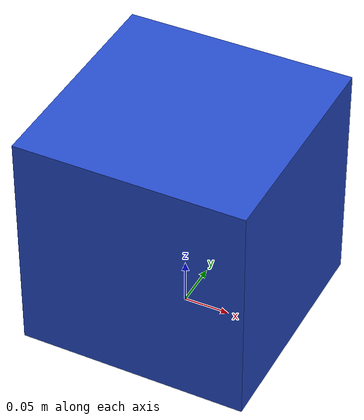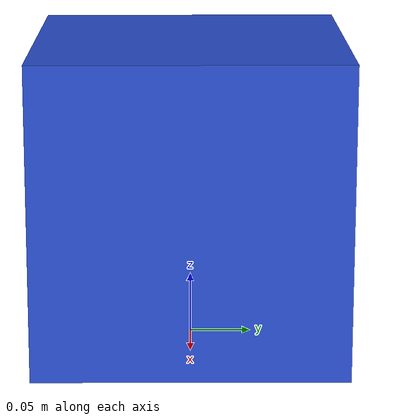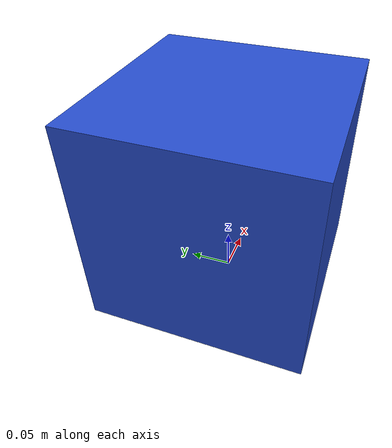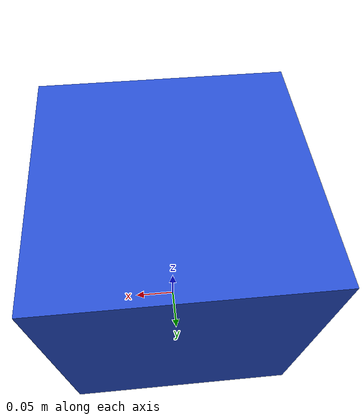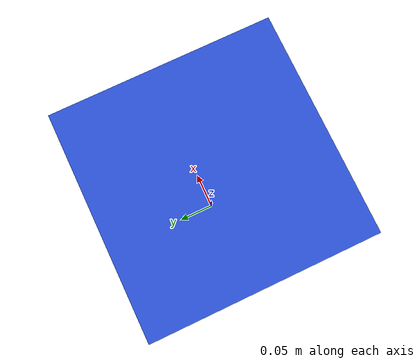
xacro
<?xml version="1.0" ?>
<robot name="box" xmlns:xacro="http://www.ros.org/wiki/xacro">
<!-- TODO adjust parameters -->
	<xacro:property name="len" value="0.25"/>
	<xacro:property name="mass" value="0.5"/>

	<link name="base_link">
		<visual>
			<origin xyz="0 0 ${len/2}" rpy="0 0 0"/>
			<geometry>
				<box size="${len} ${len} ${len}"/>
			</geometry>
		</visual>

		<collision>
			<origin xyz="0 0 ${len/2}" rpy="0 0 0"/>
			<geometry>
				<box size="${len} ${len} ${len}"/>
			</geometry>
		</collision>

		<inertial>
			<origin xyz="0 0 ${len/2}" rpy="0 0 0"/>
			<mass value="${mass}"/>
			<inertia
        		ixx="${1/6*mass*len*len}" ixy="0.0" ixz="0.0"
        		iyy="${1/6*mass*len*len}" iyz="0.0"
        		izz="${1/6*mass*len*len}"/>
		</inertial>
	</link>

<!-- TODO change friction -->
	<gazebo reference="base_link">
		<mu1>0.3</mu1>
		<mu2>0.3</mu2>
		<material>Gazebo/Blue</material>
	</gazebo>
</robot>
